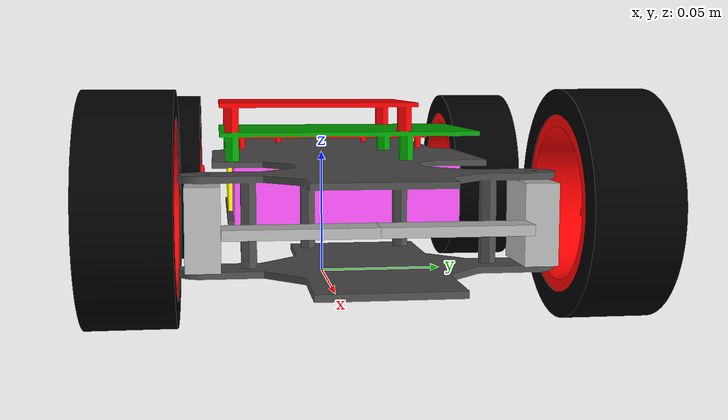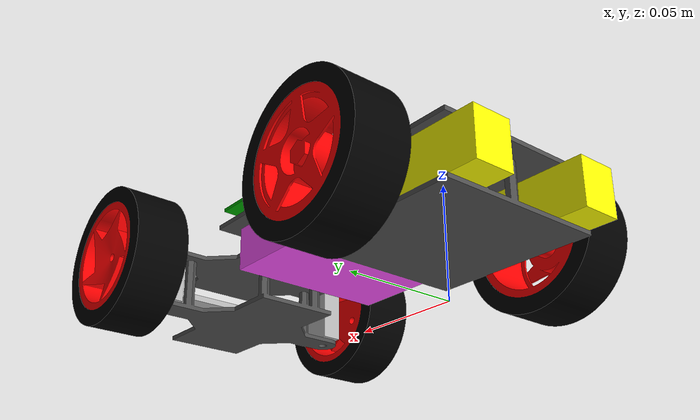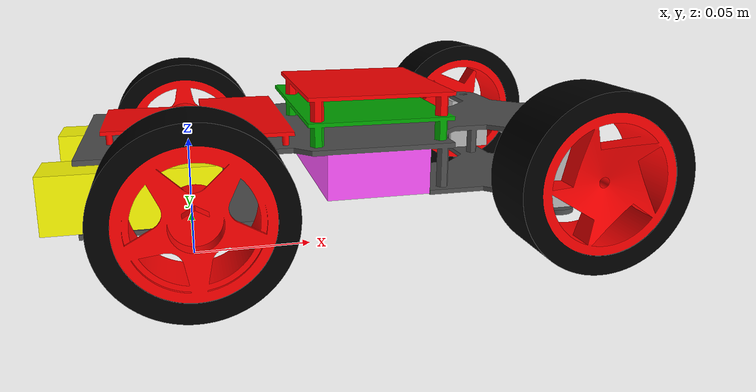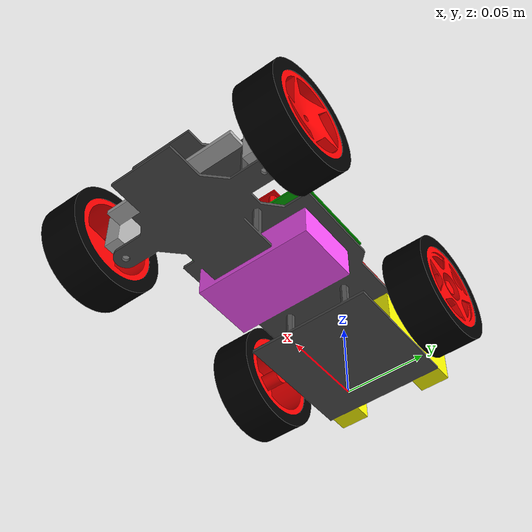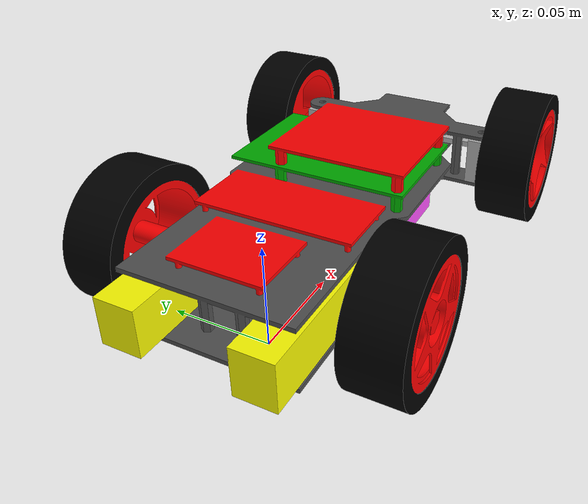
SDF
<sdf version='1.7'>
  <model name='picarx'>
    <joint name='chassis_to_world' type='fixed'>
      <pose relative_to='__model__'>0 0 0 0 -0 0</pose>
      <parent>world</parent>
      <child>chassis</child>
    </joint>
    <link name='chassis'>
      <pose relative_to='chassis_to_world'>0 0 0 0 -0 0</pose>
      <inertial>
        <pose>0 0 0 0 -0 0</pose>
        <mass>1</mass>
        <inertia>
          <ixx>0.166667</ixx>
          <ixy>0</ixy>
          <ixz>0</ixz>
          <iyy>0.166667</iyy>
          <iyz>0</iyz>
          <izz>0.166667</izz>
        </inertia>
      </inertial>
      <collision name='chassis_collision'>
        <pose>0 0 0.025 0 -0 0</pose>
        <geometry>
          <mesh>
            <scale>1 1 1</scale>
            <uri>model://picarx_description/meshes/Chassis.dae</uri>
          </mesh>
        </geometry>
      </collision>
      <visual name='chassis_visual'>
        <pose>0 0 0.025 0 -0 0</pose>
        <geometry>
          <mesh>
            <scale>1 1 1</scale>
            <uri>model://picarx_description/meshes/Chassis.dae</uri>
          </mesh>
        </geometry>
      </visual>
    </link>
    <joint name='joint_wheel_left' type='revolute'>
      <pose relative_to='chassis'>0 0.063 0.04 1.5708 -0 0</pose>
      <parent>chassis</parent>
      <child>left_wheel</child>
      <axis>
        <xyz>0 0 1</xyz>
        <limit>
          <lower>-1e+16</lower>
          <upper>1e+16</upper>
        </limit>
        <dynamics>
          <spring_reference>0</spring_reference>
          <spring_stiffness>0</spring_stiffness>
        </dynamics>
      </axis>
    </joint>
    <link name='left_wheel'>
      <pose relative_to='joint_wheel_left'>0 0 0 0 -0 0</pose>
      <inertial>
        <pose>0 0 0 0 -0 0</pose>
        <mass>1</mass>
        <inertia>
          <ixx>0.166667</ixx>
          <ixy>0</ixy>
          <ixz>0</ixz>
          <iyy>0.166667</iyy>
          <iyz>0</iyz>
          <izz>0.166667</izz>
        </inertia>
      </inertial>
      <collision name='left_wheel_collision'>
        <pose>0 0 0 0 -0 0</pose>
        <geometry>
          <mesh>
            <scale>1 1 1</scale>
            <uri>model://picarx_description/meshes/WheelRearLeft.dae</uri>
          </mesh>
        </geometry>
      </collision>
      <visual name='left_wheel_visual'>
        <pose>0 0 0 0 -0 0</pose>
        <geometry>
          <mesh>
            <scale>1 1 1</scale>
            <uri>model://picarx_description/meshes/WheelRearLeft.dae</uri>
          </mesh>
        </geometry>
      </visual>
    </link>
    <joint name='joint_wheel_right' type='revolute'>
      <pose relative_to='chassis'>0 -0.063 0.04 1.5708 -0 0</pose>
      <parent>chassis</parent>
      <child>right_wheel</child>
      <axis>
        <xyz>0 0 1</xyz>
        <limit>
          <lower>-1e+16</lower>
          <upper>1e+16</upper>
        </limit>
        <dynamics>
          <spring_reference>0</spring_reference>
          <spring_stiffness>0</spring_stiffness>
        </dynamics>
      </axis>
    </joint>
    <link name='right_wheel'>
      <pose relative_to='joint_wheel_right'>0 0 0 0 -0 0</pose>
      <inertial>
        <pose>0 0 0 0 -0 0</pose>
        <mass>1</mass>
        <inertia>
          <ixx>0.166667</ixx>
          <ixy>0</ixy>
          <ixz>0</ixz>
          <iyy>0.166667</iyy>
          <iyz>0</iyz>
          <izz>0.166667</izz>
        </inertia>
      </inertial>
      <collision name='right_wheel_collision'>
        <pose>0 0 0 0 -0 0</pose>
        <geometry>
          <mesh>
            <scale>1 1 1</scale>
            <uri>model://picarx_description/meshes/WheelRearRight.dae</uri>
          </mesh>
        </geometry>
      </collision>
      <visual name='right_wheel_visual'>
        <pose>0 0 0 0 -0 0</pose>
        <geometry>
          <mesh>
            <scale>1 1 1</scale>
            <uri>model://picarx_description/meshes/WheelRearRight.dae</uri>
          </mesh>
        </geometry>
      </visual>
    </link>
    <joint name='steer_left' type='revolute'>
      <pose relative_to='chassis'>0.142 0.048 0.0395 0 -0 0</pose>
      <parent>chassis</parent>
      <child>picarx_steer_fl</child>
      <axis>
        <xyz>0 0 1</xyz>
        <limit>
          <lower>-1e+16</lower>
          <upper>1e+16</upper>
        </limit>
        <dynamics>
          <spring_reference>0</spring_reference>
          <spring_stiffness>0</spring_stiffness>
        </dynamics>
      </axis>
    </joint>
    <link name='picarx_steer_fl'>
      <pose relative_to='steer_left'>0 0 0 0 -0 0</pose>
      <inertial>
        <pose>0 0 0 0 -0 0</pose>
        <mass>1</mass>
        <inertia>
          <ixx>0.166667</ixx>
          <ixy>0</ixy>
          <ixz>0</ixz>
          <iyy>0.166667</iyy>
          <iyz>0</iyz>
          <izz>0.166667</izz>
        </inertia>
      </inertial>
      <collision name='picarx_steer_fl_collision'>
        <pose>0 0 0 0 -0 0</pose>
        <geometry>
          <box>
            <size>0.02 0.01 0.024</size>
          </box>
        </geometry>
      </collision>
      <visual name='picarx_steer_fl_visual'>
        <pose>0 0 0 0 -0 0</pose>
        <geometry>
          <box>
            <size>0.02 0.01 0.024</size>
          </box>
        </geometry>
      </visual>
    </link>
    <joint name='front_left_wheel' type='revolute'>
      <pose relative_to='picarx_steer_fl'>0 0.02 0.005 0 -0 0</pose>
      <parent>picarx_steer_fl</parent>
      <child>picarx_WheelFrontLeft</child>
      <axis>
        <xyz>0 0 1</xyz>
        <limit>
          <lower>-1e+16</lower>
          <upper>1e+16</upper>
        </limit>
        <dynamics>
          <spring_reference>0</spring_reference>
          <spring_stiffness>0</spring_stiffness>
        </dynamics>
      </axis>
    </joint>
    <link name='picarx_WheelFrontLeft'>
      <pose relative_to='front_left_wheel'>0 0 0 0 -0 0</pose>
      <inertial>
        <pose>0 0 0 -1.5708 0 0</pose>
        <mass>1</mass>
        <inertia>
          <ixx>0.166667</ixx>
          <ixy>0</ixy>
          <ixz>0</ixz>
          <iyy>0.166667</iyy>
          <iyz>0</iyz>
          <izz>0.166667</izz>
        </inertia>
      </inertial>
      <collision name='picarx_WheelFrontLeft_collision'>
        <pose>0 0 0 -1.5708 0 0</pose>
        <geometry>
          <mesh>
            <scale>1 1 1</scale>
            <uri>model://picarx_description/meshes/WheelFrontLeft.dae</uri>
          </mesh>
        </geometry>
      </collision>
      <visual name='picarx_WheelFrontLeft_visual'>
        <pose>0 0 0 -1.5708 0 0</pose>
        <geometry>
          <mesh>
            <scale>1 1 1</scale>
            <uri>model://picarx_description/meshes/WheelFrontLeft.dae</uri>
          </mesh>
        </geometry>
      </visual>
    </link>
    <joint name='steerbar_left' type='revolute'>
      <pose relative_to='picarx_steer_fl'>0.015 -0.0265 0 0 -0 0</pose>
      <parent>picarx_steer_fl</parent>
      <child>picarx_steer_bar_l</child>
      <axis>
        <xyz>0 0 1</xyz>
        <limit>
          <lower>-1.5708</lower>
          <upper>1.5708</upper>
          <effort>1</effort>
          <velocity>1</velocity>
        </limit>
        <dynamics>
          <spring_reference>0</spring_reference>
          <spring_stiffness>0</spring_stiffness>
        </dynamics>
      </axis>
    </joint>
    <link name='picarx_steer_bar_l'>
      <pose relative_to='steerbar_left'>0 0 0 0 -0 0</pose>
      <inertial>
        <pose>0 0 0 0 -0 0</pose>
        <mass>1</mass>
        <inertia>
          <ixx>0.166667</ixx>
          <ixy>0</ixy>
          <ixz>0</ixz>
          <iyy>0.002</iyy>
          <iyz>0</iyz>
          <izz>0.166667</izz>
        </inertia>
      </inertial>
      <collision name='picarx_steer_bar_l_collision'>
        <pose>0 0 0 0 -0 0</pose>
        <geometry>
          <box>
            <size>0.01 0.043 0.003</size>
          </box>
        </geometry>
      </collision>
      <visual name='picarx_steer_bar_l_visual'>
        <pose>0 0 0 0 -0 0</pose>
        <geometry>
          <box>
            <size>0.01 0.043 0.003</size>
          </box>
        </geometry>
      </visual>
    </link>
    <joint name='steer_right' type='revolute'>
      <pose relative_to='chassis'>0.142 -0.048 0.0395 0 -0 0</pose>
      <parent>chassis</parent>
      <child>picarx_steer_fr</child>
      <axis>
        <xyz>0 0 1</xyz>
        <limit>
          <lower>-1e+16</lower>
          <upper>1e+16</upper>
        </limit>
        <dynamics>
          <spring_reference>0</spring_reference>
          <spring_stiffness>0</spring_stiffness>
        </dynamics>
      </axis>
    </joint>
    <link name='picarx_steer_fr'>
      <pose relative_to='steer_right'>0 0 0 0 -0 0</pose>
      <inertial>
        <pose>0 0 0 0 -0 0</pose>
        <mass>1</mass>
        <inertia>
          <ixx>0.166667</ixx>
          <ixy>0</ixy>
          <ixz>0</ixz>
          <iyy>0.166667</iyy>
          <iyz>0</iyz>
          <izz>0.166667</izz>
        </inertia>
      </inertial>
      <collision name='picarx_steer_fr_collision'>
        <pose>0 0 0 0 -0 0</pose>
        <geometry>
          <box>
            <size>0.02 0.01 0.024</size>
          </box>
        </geometry>
      </collision>
      <visual name='picarx_steer_fr_visual'>
        <pose>0 0 0 0 -0 0</pose>
        <geometry>
          <box>
            <size>0.02 0.01 0.024</size>
          </box>
        </geometry>
      </visual>
    </link>
    <joint name='front_right_wheel' type='revolute'>
      <pose relative_to='picarx_steer_fr'>0 -0.02 0.005 0 -0 0</pose>
      <parent>picarx_steer_fr</parent>
      <child>picarx_WheelFrontRight</child>
      <axis>
        <xyz>0 0 1</xyz>
        <limit>
          <lower>-1e+16</lower>
          <upper>1e+16</upper>
        </limit>
        <dynamics>
          <spring_reference>0</spring_reference>
          <spring_stiffness>0</spring_stiffness>
        </dynamics>
      </axis>
    </joint>
    <link name='picarx_WheelFrontRight'>
      <pose relative_to='front_right_wheel'>0 0 0 0 -0 0</pose>
      <inertial>
        <pose>0 0 0 -1.5708 0 0</pose>
        <mass>1</mass>
        <inertia>
          <ixx>0.166667</ixx>
          <ixy>0</ixy>
          <ixz>0</ixz>
          <iyy>0.166667</iyy>
          <iyz>0</iyz>
          <izz>0.166667</izz>
        </inertia>
      </inertial>
      <collision name='picarx_WheelFrontRight_collision'>
        <pose>0 0 0 -1.5708 0 0</pose>
        <geometry>
          <mesh>
            <scale>1 1 1</scale>
            <uri>model://picarx_description/meshes/WheelFrontRight.dae</uri>
          </mesh>
        </geometry>
      </collision>
      <visual name='picarx_WheelFrontRight_visual'>
        <pose>0 0 0 -1.5708 0 0</pose>
        <geometry>
          <mesh>
            <scale>1 1 1</scale>
            <uri>model://picarx_description/meshes/WheelFrontRight.dae</uri>
          </mesh>
        </geometry>
      </visual>
    </link>
    <joint name='steerbar_right' type='revolute'>
      <pose relative_to='picarx_steer_fr'>0.015 0.0265 0 0 -0 0</pose>
      <parent>picarx_steer_fr</parent>
      <child>picarx_steer_bar_r</child>
      <axis>
        <xyz>0 0 1</xyz>
        <limit>
          <lower>-1.5708</lower>
          <upper>1.5708</upper>
          <effort>1</effort>
          <velocity>1</velocity>
        </limit>
        <dynamics>
          <spring_reference>0</spring_reference>
          <spring_stiffness>0</spring_stiffness>
        </dynamics>
      </axis>
    </joint>
    <link name='picarx_steer_bar_r'>
      <pose relative_to='steerbar_right'>0 0 0 0 -0 0</pose>
      <inertial>
        <pose>0 0 0 0 -0 0</pose>
        <mass>1</mass>
        <inertia>
          <ixx>0.166667</ixx>
          <ixy>0</ixy>
          <ixz>0</ixz>
          <iyy>0.166667</iyy>
          <iyz>0</iyz>
          <izz>0.166667</izz>
        </inertia>
      </inertial>
      <collision name='picarx_steer_bar_r_collision'>
        <pose>0 0 0 0 -0 0</pose>
        <geometry>
          <box>
            <size>0.01 0.043 0.003</size>
          </box>
        </geometry>
      </collision>
      <visual name='picarx_steer_bar_r_visual'>
        <pose>0 0 0 0 -0 0</pose>
        <geometry>
          <box>
            <size>0.01 0.043 0.003</size>
          </box>
        </geometry>
      </visual>
    </link>
    <self_collide>1</self_collide>
    <joint name='ackermann_bar_loop_joint_right' type='fixed'>
      <parent>picarx_steer_bar_r</parent>
      <child>picarx_steer_bar_l</child>
    </joint>
    <static>0</static>
    <plugin name='gazebo_ros_control' filename='libgazebo_ros_control.so'>
      <robotNamespace>/picarx</robotNamespace>
    </plugin>
  </model>
</sdf>
